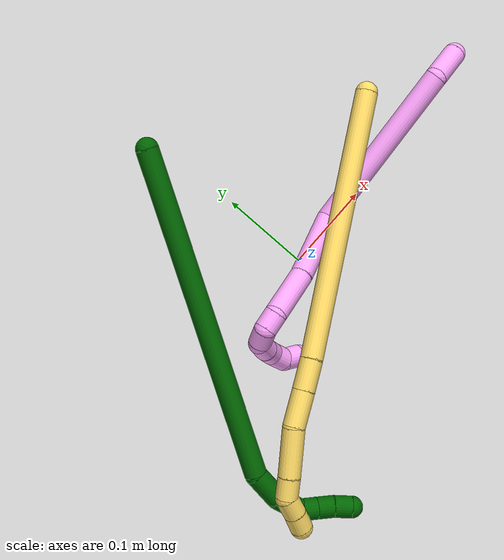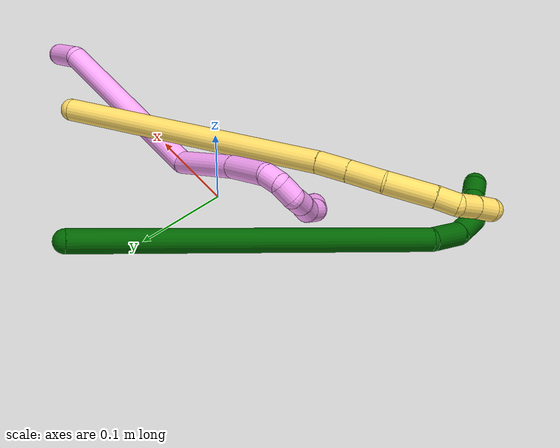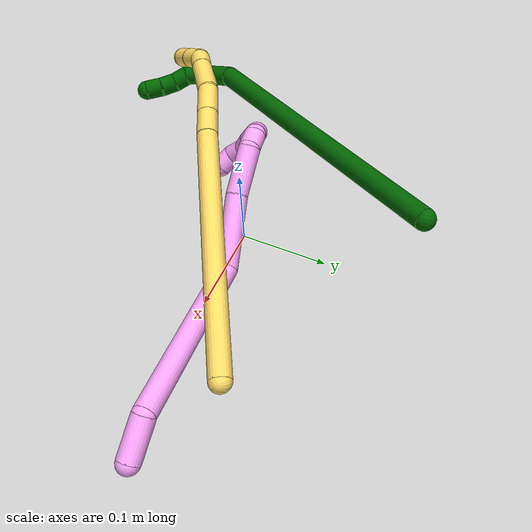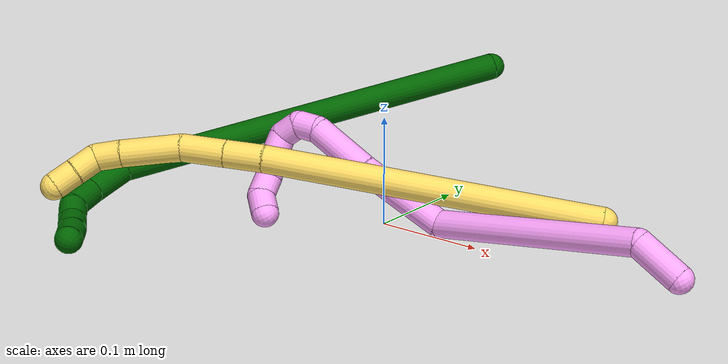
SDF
<sdf version="1.7">
 <world name="default">
  <model name="photoneo_s_sensor">
   <static>1</static>
   <pose>0 0 2 1.57079 1.57079 3.14159</pose>
   <link name="link">
    <inertial><mass>0.1</mass></inertial>
    <sensor name="sensor" type="depth">
     <update_rate>30</update_rate>
     <camera>
      <horizontal_fov>1.22</horizontal_fov>
      <image><width>1920</width><height>1200</height><format>B8G8R8</format></image>
      <clip><near>0.1</near><far>4</far></clip>
      <depth_camera><output>points</output></depth_camera>
     </camera>
     <plugin name="camera_plugin" filename="libgazebo_ros_depth_camera.so">
      <baseline>0.2</baseline>
      <alwaysOn>1</alwaysOn>
      <updateRate>0.0</updateRate>
      <cameraName>camera_ir</cameraName>
      <imageTopicName>/camera/color/image_raw</imageTopicName>
      <cameraInfoTopicName>/camera/color/camera_info</cameraInfoTopicName>
      <depthImageTopicName>/camera/depth/image_raw</depthImageTopicName>
      <depthImageCameraInfoTopicName>/camera/depth/camera_info</depthImageCameraInfoTopicName>
      <pointCloudTopicName>/camera/depth/points</pointCloudTopicName>
      <frameName>fr_optical</frameName>
      <pointCloudCutoff>0.1</pointCloudCutoff>
      <pointCloudCutoffMax>2.0</pointCloudCutoffMax>
      <distortionK1>0</distortionK1>
      <distortionK2>0</distortionK2>
      <distortionK3>0</distortionK3>
      <distortionT1>0</distortionT1>
      <distortionT2>0</distortionT2>
      <CxPrime>0</CxPrime>
      <Cx>0</Cx>
      <Cy>0</Cy>
      <focalLength>0</focalLength>
      <hackBaseline>0</hackBaseline>
     </plugin>
    </sensor>
   </link>
  </model>
  <model name="bin">
   <static>1</static>
   <link name="bottom">
    <collision name="collision-bottom">
     <pose>0 0 -0.01 0 -0 0</pose>
     <geometry><box><size>0.8 0.6 0.02</size></box></geometry>
     <surface>
      <friction><ode><mu>100</mu><mu2>100</mu2></ode></friction>
      <contact><collide_bitmask>65535</collide_bitmask></contact>
     </surface>
    </collision>
   </link>
   <link name="west_wall">
    <collision name="collision-west_wall">
     <pose>-0.41 0 0.1 0 -0 0</pose>
     <geometry><box><size>0.02 0.6 0.2</size></box></geometry>
     <surface>
      <friction><ode><mu>100</mu><mu2>100</mu2></ode></friction>
      <contact><collide_bitmask>65535</collide_bitmask></contact>
     </surface>
    </collision>
   </link>
   <link name="east_wall">
    <collision name="collision-east_wall">
     <pose>0.41 0 0.1 0 -0 0</pose>
     <geometry><box><size>0.02 0.6 0.2</size></box></geometry>
     <surface>
      <friction><ode><mu>100</mu><mu2>100</mu2></ode></friction>
      <contact><collide_bitmask>65535</collide_bitmask></contact>
     </surface>
    </collision>
   </link>
   <link name="south_wall">
    <collision name="collision-south_wall">
     <pose>0 -0.31 0.1 0 -0 0</pose>
     <geometry><box><size>0.8 0.02 0.2</size></box></geometry>
     <surface>
      <friction><ode><mu>100</mu><mu2>100</mu2></ode></friction>
      <contact><collide_bitmask>65535</collide_bitmask></contact>
     </surface>
    </collision>
   </link>
   <link name="north_wall">
    <collision name="collision-north_wall">
     <pose>0 0.31 0.1 0 -0 0</pose>
     <geometry><box><size>0.8 0.02 0.2</size></box></geometry>
     <surface>
      <friction><ode><mu>100</mu><mu2>100</mu2></ode></friction>
      <contact><collide_bitmask>65535</collide_bitmask></contact>
     </surface>
    </collision>
   </link>
  </model>
  <model name="4">
   <static>0</static>
   <link name="4">
    <collision name="collision-cylinder-e_1_1_4">
     <pose>-0.020271 0.001698 0.009768 -0.172096 -1.1159 0.107566</pose>
     <geometry><cylinder><radius>0.0125</radius><length>0.045132</length></cylinder></geometry>
     <surface>
      <friction><ode><mu>1.16</mu><mu2>1.16</mu2><slip1>0</slip1><slip2>0</slip2></ode></friction>
      <contact><ode><kp>1e+06</kp><kd>1</kd><max_vel>0</max_vel><min_depth>0.001</min_depth></ode></contact>
     </surface>
    </collision>
    <visual name="visual-cylinder-e_1_1_4">
     <pose>-0.020271 0.001698 0.009768 -0.172096 -1.1159 0.107566</pose>
     <geometry><cylinder><radius>0.0125</radius><length>0.045132</length></cylinder></geometry>
     <material><ambient>1 0.65098 0.996078 1</ambient></material>
    </visual>
    <collision name="collision-cylinder-e_2_4_5">
     <pose>-0.088568 -0.020778 0.100567 0.289923 -0.516522 -0.077089</pose>
     <geometry><cylinder><radius>0.0125</radius><length>0.194491</length></cylinder></geometry>
     <surface>
      <friction><ode><mu>1.16</mu><mu2>1.16</mu2><slip1>0</slip1><slip2>0</slip2></ode></friction>
      <contact><ode><kp>1e+06</kp><kd>1</kd><max_vel>0</max_vel><min_depth>0.001</min_depth></ode></contact>
     </surface>
    </collision>
    <visual name="visual-cylinder-e_2_4_5">
     <pose>-0.088568 -0.020778 0.100567 0.289923 -0.516522 -0.077089</pose>
     <geometry><cylinder><radius>0.0125</radius><length>0.194491</length></cylinder></geometry>
     <material><ambient>1 0.65098 0.996078 1</ambient></material>
    </visual>
    <collision name="collision-cylinder-e_3_5_6">
     <pose>-0.170922 -0.03552 0.202901 -0.416768 -0.974528 0.223159</pose>
     <geometry><cylinder><radius>0.0125</radius><length>0.082976</length></cylinder></geometry>
     <surface>
      <friction><ode><mu>1.16</mu><mu2>1.16</mu2><slip1>0</slip1><slip2>0</slip2></ode></friction>
      <contact><ode><kp>1e+06</kp><kd>1</kd><max_vel>0</max_vel><min_depth>0.001</min_depth></ode></contact>
     </surface>
    </collision>
    <visual name="visual-cylinder-e_3_5_6">
     <pose>-0.170922 -0.03552 0.202901 -0.416768 -0.974528 0.223159</pose>
     <geometry><cylinder><radius>0.0125</radius><length>0.082976</length></cylinder></geometry>
     <material><ambient>1 0.65098 0.996078 1</ambient></material>
    </visual>
    <collision name="collision-cylinder-e_4_6_7">
     <pose>-0.230074 -0.022773 0.237577 -0.24307 -1.06409 0.143549</pose>
     <geometry><cylinder><radius>0.0125</radius><length>0.05678</length></cylinder></geometry>
     <surface>
      <friction><ode><mu>1.16</mu><mu2>1.16</mu2><slip1>0</slip1><slip2>0</slip2></ode></friction>
      <contact><ode><kp>1e+06</kp><kd>1</kd><max_vel>0</max_vel><min_depth>0.001</min_depth></ode></contact>
     </surface>
    </collision>
    <visual name="visual-cylinder-e_4_6_7">
     <pose>-0.230074 -0.022773 0.237577 -0.24307 -1.06409 0.143549</pose>
     <geometry><cylinder><radius>0.0125</radius><length>0.05678</length></cylinder></geometry>
     <material><ambient>1 0.65098 0.996078 1</ambient></material>
    </visual>
    <collision name="collision-cylinder-e_5_7_8">
     <pose>-0.261327 -0.020436 0.258698 0.125687 -0.688807 -0.045136</pose>
     <geometry><cylinder><radius>0.0125</radius><length>0.020233</length></cylinder></geometry>
     <surface>
      <friction><ode><mu>1.16</mu><mu2>1.16</mu2><slip1>0</slip1><slip2>0</slip2></ode></friction>
      <contact><ode><kp>1e+06</kp><kd>1</kd><max_vel>0</max_vel><min_depth>0.001</min_depth></ode></contact>
     </surface>
    </collision>
    <visual name="visual-cylinder-e_5_7_8">
     <pose>-0.261327 -0.020436 0.258698 0.125687 -0.688807 -0.045136</pose>
     <geometry><cylinder><radius>0.0125</radius><length>0.020233</length></cylinder></geometry>
     <material><ambient>1 0.65098 0.996078 1</ambient></material>
    </visual>
    <collision name="collision-cylinder-e_6_8_9">
     <pose>-0.267188 -0.023955 0.276131 0.256488 0.056769 0.007322</pose>
     <geometry><cylinder><radius>0.0125</radius><length>0.020056</length></cylinder></geometry>
     <surface>
      <friction><ode><mu>1.16</mu><mu2>1.16</mu2><slip1>0</slip1><slip2>0</slip2></ode></friction>
      <contact><ode><kp>1e+06</kp><kd>1</kd><max_vel>0</max_vel><min_depth>0.001</min_depth></ode></contact>
     </surface>
    </collision>
    <visual name="visual-cylinder-e_6_8_9">
     <pose>-0.267188 -0.023955 0.276131 0.256488 0.056769 0.007322</pose>
     <geometry><cylinder><radius>0.0125</radius><length>0.020056</length></cylinder></geometry>
     <material><ambient>1 0.65098 0.996078 1</ambient></material>
    </visual>
    <collision name="collision-cylinder-e_7_9_10">
     <pose>-0.259276 -0.026569 0.292803 0.010652 0.810192 0.004568</pose>
     <geometry><cylinder><radius>0.0125</radius><length>0.020274</length></cylinder></geometry>
     <surface>
      <friction><ode><mu>1.16</mu><mu2>1.16</mu2><slip1>0</slip1><slip2>0</slip2></ode></friction>
      <contact><ode><kp>1e+06</kp><kd>1</kd><max_vel>0</max_vel><min_depth>0.001</min_depth></ode></contact>
     </surface>
    </collision>
    <visual name="visual-cylinder-e_7_9_10">
     <pose>-0.259276 -0.026569 0.292803 0.010652 0.810192 0.004568</pose>
     <geometry><cylinder><radius>0.0125</radius><length>0.020274</length></cylinder></geometry>
     <material><ambient>1 0.65098 0.996078 1</ambient></material>
    </visual>
    <collision name="collision-cylinder-e_8_10_11">
     <pose>-0.243875 -0.027371 0.305669 0.123175 0.936908 0.062388</pose>
     <geometry><cylinder><radius>0.0125</radius><length>0.02</length></cylinder></geometry>
     <surface>
      <friction><ode><mu>1.16</mu><mu2>1.16</mu2><slip1>0</slip1><slip2>0</slip2></ode></friction>
      <contact><ode><kp>1e+06</kp><kd>1</kd><max_vel>0</max_vel><min_depth>0.001</min_depth></ode></contact>
     </surface>
    </collision>
    <visual name="visual-cylinder-e_8_10_11">
     <pose>-0.243875 -0.027371 0.305669 0.123175 0.936908 0.062388</pose>
     <geometry><cylinder><radius>0.0125</radius><length>0.02</length></cylinder></geometry>
     <material><ambient>1 0.65098 0.996078 1</ambient></material>
    </visual>
    <collision name="collision-cylinder-e_9_11_12">
     <pose>-0.228021 -0.024689 0.31681 -0.57488 0.893464 -0.281358</pose>
     <geometry><cylinder><radius>0.0125</radius><length>0.020011</length></cylinder></geometry>
     <surface>
      <friction><ode><mu>1.16</mu><mu2>1.16</mu2><slip1>0</slip1><slip2>0</slip2></ode></friction>
      <contact><ode><kp>1e+06</kp><kd>1</kd><max_vel>0</max_vel><min_depth>0.001</min_depth></ode></contact>
     </surface>
    </collision>
    <visual name="visual-cylinder-e_9_11_12">
     <pose>-0.228021 -0.024689 0.31681 -0.57488 0.893464 -0.281358</pose>
     <geometry><cylinder><radius>0.0125</radius><length>0.020011</length></cylinder></geometry>
     <material><ambient>1 0.65098 0.996078 1</ambient></material>
    </visual>
    <collision name="collision-cylinder-e_10_12_2">
     <pose>-0.210628 -0.018388 0.321981 -1.60222 1.27792 -1.30815</pose>
     <geometry><cylinder><radius>0.0125</radius><length>0.020046</length></cylinder></geometry>
     <surface>
      <friction><ode><mu>1.16</mu><mu2>1.16</mu2><slip1>0</slip1><slip2>0</slip2></ode></friction>
      <contact><ode><kp>1e+06</kp><kd>1</kd><max_vel>0</max_vel><min_depth>0.001</min_depth></ode></contact>
     </surface>
    </collision>
    <visual name="visual-cylinder-e_10_12_2">
     <pose>-0.210628 -0.018388 0.321981 -1.60222 1.27792 -1.30815</pose>
     <geometry><cylinder><radius>0.0125</radius><length>0.020046</length></cylinder></geometry>
     <material><ambient>1 0.65098 0.996078 1</ambient></material>
    </visual>
    <collision name="collision-sphere-2">
     <pose>-0.201031 -0.015495 0.32189 0 -0 0</pose>
     <geometry><sphere><radius>0.0125</radius></sphere></geometry>
     <surface>
      <friction><ode><mu>1.16</mu><mu2>1.16</mu2><slip1>0</slip1><slip2>0</slip2></ode></friction>
      <contact><ode><kp>1e+06</kp><kd>1</kd><max_vel>0</max_vel><min_depth>0.001</min_depth></ode></contact>
     </surface>
    </collision>
    <visual name="visual-sphere-2">
     <pose>-0.201031 -0.015495 0.32189 0 -0 0</pose>
     <geometry><sphere><radius>0.0125</radius></sphere></geometry>
     <material><ambient>1 0.65098 0.996078 1</ambient></material>
    </visual>
    <collision name="collision-sphere-12">
     <pose>-0.220224 -0.02128 0.322072 0 -0 0</pose>
     <geometry><sphere><radius>0.0125</radius></sphere></geometry>
     <surface>
      <friction><ode><mu>1.16</mu><mu2>1.16</mu2><slip1>0</slip1><slip2>0</slip2></ode></friction>
      <contact><ode><kp>1e+06</kp><kd>1</kd><max_vel>0</max_vel><min_depth>0.001</min_depth></ode></contact>
     </surface>
    </collision>
    <visual name="visual-sphere-12">
     <pose>-0.220224 -0.02128 0.322072 0 -0 0</pose>
     <geometry><sphere><radius>0.0125</radius></sphere></geometry>
     <material><ambient>1 0.65098 0.996078 1</ambient></material>
    </visual>
    <collision name="collision-sphere-11">
     <pose>-0.235817 -0.028099 0.311547 0 -0 0</pose>
     <geometry><sphere><radius>0.0125</radius></sphere></geometry>
     <surface>
      <friction><ode><mu>1.16</mu><mu2>1.16</mu2><slip1>0</slip1><slip2>0</slip2></ode></friction>
      <contact><ode><kp>1e+06</kp><kd>1</kd><max_vel>0</max_vel><min_depth>0.001</min_depth></ode></contact>
     </surface>
    </collision>
    <visual name="visual-sphere-11">
     <pose>-0.235817 -0.028099 0.311547 0 -0 0</pose>
     <geometry><sphere><radius>0.0125</radius></sphere></geometry>
     <material><ambient>1 0.65098 0.996078 1</ambient></material>
    </visual>
    <collision name="collision-sphere-10">
     <pose>-0.251932 -0.026643 0.299791 0 -0 0</pose>
     <geometry><sphere><radius>0.0125</radius></sphere></geometry>
     <surface>
      <friction><ode><mu>1.16</mu><mu2>1.16</mu2><slip1>0</slip1><slip2>0</slip2></ode></friction>
      <contact><ode><kp>1e+06</kp><kd>1</kd><max_vel>0</max_vel><min_depth>0.001</min_depth></ode></contact>
     </surface>
    </collision>
    <visual name="visual-sphere-10">
     <pose>-0.251932 -0.026643 0.299791 0 -0 0</pose>
     <geometry><sphere><radius>0.0125</radius></sphere></geometry>
     <material><ambient>1 0.65098 0.996078 1</ambient></material>
    </visual>
    <collision name="collision-sphere-9">
     <pose>-0.266619 -0.026495 0.285816 0 -0 0</pose>
     <geometry><sphere><radius>0.0125</radius></sphere></geometry>
     <surface>
      <friction><ode><mu>1.16</mu><mu2>1.16</mu2><slip1>0</slip1><slip2>0</slip2></ode></friction>
      <contact><ode><kp>1e+06</kp><kd>1</kd><max_vel>0</max_vel><min_depth>0.001</min_depth></ode></contact>
     </surface>
    </collision>
    <visual name="visual-sphere-9">
     <pose>-0.266619 -0.026495 0.285816 0 -0 0</pose>
     <geometry><sphere><radius>0.0125</radius></sphere></geometry>
     <material><ambient>1 0.65098 0.996078 1</ambient></material>
    </visual>
    <collision name="collision-sphere-4">
     <pose>-0.040542 0.003396 0.019537 0 -0 0</pose>
     <geometry><sphere><radius>0.0125</radius></sphere></geometry>
     <surface>
      <friction><ode><mu>1.16</mu><mu2>1.16</mu2><slip1>0</slip1><slip2>0</slip2></ode></friction>
      <contact><ode><kp>1e+06</kp><kd>1</kd><max_vel>0</max_vel><min_depth>0.001</min_depth></ode></contact>
     </surface>
    </collision>
    <visual name="visual-sphere-4">
     <pose>-0.040542 0.003396 0.019537 0 -0 0</pose>
     <geometry><sphere><radius>0.0125</radius></sphere></geometry>
     <material><ambient>1 0.65098 0.996078 1</ambient></material>
    </visual>
    <collision name="collision-sphere-1">
     <geometry><sphere><radius>0.0125</radius></sphere></geometry>
     <surface>
      <friction><ode><mu>1.16</mu><mu2>1.16</mu2><slip1>0</slip1><slip2>0</slip2></ode></friction>
      <contact><ode><kp>1e+06</kp><kd>1</kd><max_vel>0</max_vel><min_depth>0.001</min_depth></ode></contact>
     </surface>
    </collision>
    <visual name="visual-sphere-1">
     <geometry><sphere><radius>0.0125</radius></sphere></geometry>
     <material><ambient>1 0.65098 0.996078 1</ambient></material>
    </visual>
    <collision name="collision-sphere-8">
     <pose>-0.267757 -0.021415 0.266447 0 -0 0</pose>
     <geometry><sphere><radius>0.0125</radius></sphere></geometry>
     <surface>
      <friction><ode><mu>1.16</mu><mu2>1.16</mu2><slip1>0</slip1><slip2>0</slip2></ode></friction>
      <contact><ode><kp>1e+06</kp><kd>1</kd><max_vel>0</max_vel><min_depth>0.001</min_depth></ode></contact>
     </surface>
    </collision>
    <visual name="visual-sphere-8">
     <pose>-0.267757 -0.021415 0.266447 0 -0 0</pose>
     <geometry><sphere><radius>0.0125</radius></sphere></geometry>
     <material><ambient>1 0.65098 0.996078 1</ambient></material>
    </visual>
    <collision name="collision-sphere-5">
     <pose>-0.136593 -0.044951 0.181597 0 -0 0</pose>
     <geometry><sphere><radius>0.0125</radius></sphere></geometry>
     <surface>
      <friction><ode><mu>1.16</mu><mu2>1.16</mu2><slip1>0</slip1><slip2>0</slip2></ode></friction>
      <contact><ode><kp>1e+06</kp><kd>1</kd><max_vel>0</max_vel><min_depth>0.001</min_depth></ode></contact>
     </surface>
    </collision>
    <visual name="visual-sphere-5">
     <pose>-0.136593 -0.044951 0.181597 0 -0 0</pose>
     <geometry><sphere><radius>0.0125</radius></sphere></geometry>
     <material><ambient>1 0.65098 0.996078 1</ambient></material>
    </visual>
    <collision name="collision-sphere-6">
     <pose>-0.205251 -0.026089 0.224204 0 -0 0</pose>
     <geometry><sphere><radius>0.0125</radius></sphere></geometry>
     <surface>
      <friction><ode><mu>1.16</mu><mu2>1.16</mu2><slip1>0</slip1><slip2>0</slip2></ode></friction>
      <contact><ode><kp>1e+06</kp><kd>1</kd><max_vel>0</max_vel><min_depth>0.001</min_depth></ode></contact>
     </surface>
    </collision>
    <visual name="visual-sphere-6">
     <pose>-0.205251 -0.026089 0.224204 0 -0 0</pose>
     <geometry><sphere><radius>0.0125</radius></sphere></geometry>
     <material><ambient>1 0.65098 0.996078 1</ambient></material>
    </visual>
    <collision name="collision-sphere-7">
     <pose>-0.254897 -0.019457 0.25095 0 -0 0</pose>
     <geometry><sphere><radius>0.0125</radius></sphere></geometry>
     <surface>
      <friction><ode><mu>1.16</mu><mu2>1.16</mu2><slip1>0</slip1><slip2>0</slip2></ode></friction>
      <contact><ode><kp>1e+06</kp><kd>1</kd><max_vel>0</max_vel><min_depth>0.001</min_depth></ode></contact>
     </surface>
    </collision>
    <visual name="visual-sphere-7">
     <pose>-0.254897 -0.019457 0.25095 0 -0 0</pose>
     <geometry><sphere><radius>0.0125</radius></sphere></geometry>
     <material><ambient>1 0.65098 0.996078 1</ambient></material>
    </visual>
    <inertial>
     <pose>-0.149904 -0.022095 0.171884 0 -0 0</pose>
     <mass>0.5</mass>
     <inertia>
      <ixx>0.000534</ixx>
      <ixy>0</ixy>
      <ixz>0</ixz>
      <iyy>0.000649</iyy>
      <iyz>0</iyz>
      <izz>0.000533</izz>
     </inertia>
    </inertial>
   </link>
   <pose>0.28792 0.020924 0.012224 2.31157 0.847235 -0.400789</pose>
  </model>
  <model name="5">
   <static>0</static>
   <link name="5">
    <collision name="collision-cylinder-e_1_1_4">
     <pose>-0.051958 -0.124614 -0.067115 2.06483 -0.351825 -0.578553</pose>
     <geometry><cylinder><radius>0.0125</radius><length>0.301548</length></cylinder></geometry>
     <surface>
      <friction><ode><mu>1.16</mu><mu2>1.16</mu2><slip1>0</slip1><slip2>0</slip2></ode></friction>
      <contact><ode><kp>1e+06</kp><kd>1</kd><max_vel>0</max_vel><min_depth>0.001</min_depth></ode></contact>
     </surface>
    </collision>
    <visual name="visual-cylinder-e_1_1_4">
     <pose>-0.051958 -0.124614 -0.067115 2.06483 -0.351825 -0.578553</pose>
     <geometry><cylinder><radius>0.0125</radius><length>0.301548</length></cylinder></geometry>
     <material><ambient>1 0.858824 0.4 1</ambient></material>
    </visual>
    <collision name="collision-cylinder-e_2_4_5">
     <pose>-0.109313 -0.263156 -0.143053 2.13539 -0.316304 -0.564131</pose>
     <geometry><cylinder><radius>0.0125</radius><length>0.034696</length></cylinder></geometry>
     <surface>
      <friction><ode><mu>1.16</mu><mu2>1.16</mu2><slip1>0</slip1><slip2>0</slip2></ode></friction>
      <contact><ode><kp>1e+06</kp><kd>1</kd><max_vel>0</max_vel><min_depth>0.001</min_depth></ode></contact>
     </surface>
    </collision>
    <visual name="visual-cylinder-e_2_4_5">
     <pose>-0.109313 -0.263156 -0.143053 2.13539 -0.316304 -0.564131</pose>
     <geometry><cylinder><radius>0.0125</radius><length>0.034696</length></cylinder></geometry>
     <material><ambient>1 0.858824 0.4 1</ambient></material>
    </visual>
    <collision name="collision-cylinder-e_3_5_6">
     <pose>-0.121085 -0.293145 -0.162356 2.14902 -0.320959 -0.580961</pose>
     <geometry><cylinder><radius>0.0125</radius><length>0.040419</length></cylinder></geometry>
     <surface>
      <friction><ode><mu>1.16</mu><mu2>1.16</mu2><slip1>0</slip1><slip2>0</slip2></ode></friction>
      <contact><ode><kp>1e+06</kp><kd>1</kd><max_vel>0</max_vel><min_depth>0.001</min_depth></ode></contact>
     </surface>
    </collision>
    <visual name="visual-cylinder-e_3_5_6">
     <pose>-0.121085 -0.293145 -0.162356 2.14902 -0.320959 -0.580961</pose>
     <geometry><cylinder><radius>0.0125</radius><length>0.040419</length></cylinder></geometry>
     <material><ambient>1 0.858824 0.4 1</ambient></material>
    </visual>
    <collision name="collision-cylinder-e_4_6_7">
     <pose>-0.129397 -0.332791 -0.186126 2.08387 -0.071404 -0.122086</pose>
     <geometry><cylinder><radius>0.0125</radius><length>0.054284</length></cylinder></geometry>
     <surface>
      <friction><ode><mu>1.16</mu><mu2>1.16</mu2><slip1>0</slip1><slip2>0</slip2></ode></friction>
      <contact><ode><kp>1e+06</kp><kd>1</kd><max_vel>0</max_vel><min_depth>0.001</min_depth></ode></contact>
     </surface>
    </collision>
    <visual name="visual-cylinder-e_4_6_7">
     <pose>-0.129397 -0.332791 -0.186126 2.08387 -0.071404 -0.122086</pose>
     <geometry><cylinder><radius>0.0125</radius><length>0.054284</length></cylinder></geometry>
     <material><ambient>1 0.858824 0.4 1</ambient></material>
    </visual>
    <collision name="collision-cylinder-e_5_7_8">
     <pose>-0.13175 -0.36653 -0.205921 2.14079 -0.034508 -0.063092</pose>
     <geometry><cylinder><radius>0.0125</radius><length>0.02413</length></cylinder></geometry>
     <surface>
      <friction><ode><mu>1.16</mu><mu2>1.16</mu2><slip1>0</slip1><slip2>0</slip2></ode></friction>
      <contact><ode><kp>1e+06</kp><kd>1</kd><max_vel>0</max_vel><min_depth>0.001</min_depth></ode></contact>
     </surface>
    </collision>
    <visual name="visual-cylinder-e_5_7_8">
     <pose>-0.13175 -0.36653 -0.205921 2.14079 -0.034508 -0.063092</pose>
     <geometry><cylinder><radius>0.0125</radius><length>0.02413</length></cylinder></geometry>
     <material><ambient>1 0.858824 0.4 1</ambient></material>
    </visual>
    <collision name="collision-cylinder-e_6_8_9">
     <pose>-0.126541 -0.386464 -0.214916 1.81986 0.508385 0.645</pose>
     <geometry><cylinder><radius>0.0125</radius><length>0.023111</length></cylinder></geometry>
     <surface>
      <friction><ode><mu>1.16</mu><mu2>1.16</mu2><slip1>0</slip1><slip2>0</slip2></ode></friction>
      <contact><ode><kp>1e+06</kp><kd>1</kd><max_vel>0</max_vel><min_depth>0.001</min_depth></ode></contact>
     </surface>
    </collision>
    <visual name="visual-cylinder-e_6_8_9">
     <pose>-0.126541 -0.386464 -0.214916 1.81986 0.508385 0.645</pose>
     <geometry><cylinder><radius>0.0125</radius><length>0.023111</length></cylinder></geometry>
     <material><ambient>1 0.858824 0.4 1</ambient></material>
    </visual>
    <collision name="collision-cylinder-e_7_9_2">
     <pose>-0.115735 -0.405357 -0.220423 1.89076 0.495062 0.67328</pose>
     <geometry><cylinder><radius>0.0125</radius><length>0.021813</length></cylinder></geometry>
     <surface>
      <friction><ode><mu>1.16</mu><mu2>1.16</mu2><slip1>0</slip1><slip2>0</slip2></ode></friction>
      <contact><ode><kp>1e+06</kp><kd>1</kd><max_vel>0</max_vel><min_depth>0.001</min_depth></ode></contact>
     </surface>
    </collision>
    <visual name="visual-cylinder-e_7_9_2">
     <pose>-0.115735 -0.405357 -0.220423 1.89076 0.495062 0.67328</pose>
     <geometry><cylinder><radius>0.0125</radius><length>0.021813</length></cylinder></geometry>
     <material><ambient>1 0.858824 0.4 1</ambient></material>
    </visual>
    <collision name="collision-sphere-2">
     <pose>-0.110553 -0.414466 -0.223441 0 -0 0</pose>
     <geometry><sphere><radius>0.0125</radius></sphere></geometry>
     <surface>
      <friction><ode><mu>1.16</mu><mu2>1.16</mu2><slip1>0</slip1><slip2>0</slip2></ode></friction>
      <contact><ode><kp>1e+06</kp><kd>1</kd><max_vel>0</max_vel><min_depth>0.001</min_depth></ode></contact>
     </surface>
    </collision>
    <visual name="visual-sphere-2">
     <pose>-0.110553 -0.414466 -0.223441 0 -0 0</pose>
     <geometry><sphere><radius>0.0125</radius></sphere></geometry>
     <material><ambient>1 0.858824 0.4 1</ambient></material>
    </visual>
    <collision name="collision-sphere-9">
     <pose>-0.120916 -0.396247 -0.217404 0 -0 0</pose>
     <geometry><sphere><radius>0.0125</radius></sphere></geometry>
     <surface>
      <friction><ode><mu>1.16</mu><mu2>1.16</mu2><slip1>0</slip1><slip2>0</slip2></ode></friction>
      <contact><ode><kp>1e+06</kp><kd>1</kd><max_vel>0</max_vel><min_depth>0.001</min_depth></ode></contact>
     </surface>
    </collision>
    <visual name="visual-sphere-9">
     <pose>-0.120916 -0.396247 -0.217404 0 -0 0</pose>
     <geometry><sphere><radius>0.0125</radius></sphere></geometry>
     <material><ambient>1 0.858824 0.4 1</ambient></material>
    </visual>
    <collision name="collision-sphere-4">
     <pose>-0.103917 -0.249228 -0.134231 0 -0 0</pose>
     <geometry><sphere><radius>0.0125</radius></sphere></geometry>
     <surface>
      <friction><ode><mu>1.16</mu><mu2>1.16</mu2><slip1>0</slip1><slip2>0</slip2></ode></friction>
      <contact><ode><kp>1e+06</kp><kd>1</kd><max_vel>0</max_vel><min_depth>0.001</min_depth></ode></contact>
     </surface>
    </collision>
    <visual name="visual-sphere-4">
     <pose>-0.103917 -0.249228 -0.134231 0 -0 0</pose>
     <geometry><sphere><radius>0.0125</radius></sphere></geometry>
     <material><ambient>1 0.858824 0.4 1</ambient></material>
    </visual>
    <collision name="collision-sphere-1">
     <geometry><sphere><radius>0.0125</radius></sphere></geometry>
     <surface>
      <friction><ode><mu>1.16</mu><mu2>1.16</mu2><slip1>0</slip1><slip2>0</slip2></ode></friction>
      <contact><ode><kp>1e+06</kp><kd>1</kd><max_vel>0</max_vel><min_depth>0.001</min_depth></ode></contact>
     </surface>
    </collision>
    <visual name="visual-sphere-1">
     <geometry><sphere><radius>0.0125</radius></sphere></geometry>
     <material><ambient>1 0.858824 0.4 1</ambient></material>
    </visual>
    <collision name="collision-sphere-8">
     <pose>-0.132166 -0.376682 -0.212428 0 -0 0</pose>
     <geometry><sphere><radius>0.0125</radius></sphere></geometry>
     <surface>
      <friction><ode><mu>1.16</mu><mu2>1.16</mu2><slip1>0</slip1><slip2>0</slip2></ode></friction>
      <contact><ode><kp>1e+06</kp><kd>1</kd><max_vel>0</max_vel><min_depth>0.001</min_depth></ode></contact>
     </surface>
    </collision>
    <visual name="visual-sphere-8">
     <pose>-0.132166 -0.376682 -0.212428 0 -0 0</pose>
     <geometry><sphere><radius>0.0125</radius></sphere></geometry>
     <material><ambient>1 0.858824 0.4 1</ambient></material>
    </visual>
    <collision name="collision-sphere-5">
     <pose>-0.114709 -0.277085 -0.151875 0 -0 0</pose>
     <geometry><sphere><radius>0.0125</radius></sphere></geometry>
     <surface>
      <friction><ode><mu>1.16</mu><mu2>1.16</mu2><slip1>0</slip1><slip2>0</slip2></ode></friction>
      <contact><ode><kp>1e+06</kp><kd>1</kd><max_vel>0</max_vel><min_depth>0.001</min_depth></ode></contact>
     </surface>
    </collision>
    <visual name="visual-sphere-5">
     <pose>-0.114709 -0.277085 -0.151875 0 -0 0</pose>
     <geometry><sphere><radius>0.0125</radius></sphere></geometry>
     <material><ambient>1 0.858824 0.4 1</ambient></material>
    </visual>
    <collision name="collision-sphere-6">
     <pose>-0.127461 -0.309205 -0.172837 0 -0 0</pose>
     <geometry><sphere><radius>0.0125</radius></sphere></geometry>
     <surface>
      <friction><ode><mu>1.16</mu><mu2>1.16</mu2><slip1>0</slip1><slip2>0</slip2></ode></friction>
      <contact><ode><kp>1e+06</kp><kd>1</kd><max_vel>0</max_vel><min_depth>0.001</min_depth></ode></contact>
     </surface>
    </collision>
    <visual name="visual-sphere-6">
     <pose>-0.127461 -0.309205 -0.172837 0 -0 0</pose>
     <geometry><sphere><radius>0.0125</radius></sphere></geometry>
     <material><ambient>1 0.858824 0.4 1</ambient></material>
    </visual>
    <collision name="collision-sphere-7">
     <pose>-0.131333 -0.356378 -0.199415 0 -0 0</pose>
     <geometry><sphere><radius>0.0125</radius></sphere></geometry>
     <surface>
      <friction><ode><mu>1.16</mu><mu2>1.16</mu2><slip1>0</slip1><slip2>0</slip2></ode></friction>
      <contact><ode><kp>1e+06</kp><kd>1</kd><max_vel>0</max_vel><min_depth>0.001</min_depth></ode></contact>
     </surface>
    </collision>
    <visual name="visual-sphere-7">
     <pose>-0.131333 -0.356378 -0.199415 0 -0 0</pose>
     <geometry><sphere><radius>0.0125</radius></sphere></geometry>
     <material><ambient>1 0.858824 0.4 1</ambient></material>
    </visual>
    <inertial>
     <pose>-0.080014 -0.206478 -0.113223 0 -0 0</pose>
     <mass>0.5</mass>
     <inertia>
      <ixx>0.000641</ixx>
      <ixy>0</ixy>
      <ixz>0</ixz>
      <iyy>-0.00176</iyy>
      <iyz>0</iyz>
      <izz>0.002703</izz>
     </inertia>
    </inertial>
   </link>
   <pose>0.188266 0.065695 0.026774 -0.171789 1.01145 -0.610679</pose>
  </model>
  <model name="6">
   <static>0</static>
   <link name="6">
    <collision name="collision-cylinder-e_1_1_4">
     <pose>-0.009134 -0.148918 0.110967 0.930403 -0.049145 -0.024672</pose>
     <geometry><cylinder><radius>0.0125</radius><length>0.371881</length></cylinder></geometry>
     <surface>
      <friction><ode><mu>1.16</mu><mu2>1.16</mu2><slip1>0</slip1><slip2>0</slip2></ode></friction>
      <contact><ode><kp>1e+06</kp><kd>1</kd><max_vel>0</max_vel><min_depth>0.001</min_depth></ode></contact>
     </surface>
    </collision>
    <visual name="visual-cylinder-e_1_1_4">
     <pose>-0.009134 -0.148918 0.110967 0.930403 -0.049145 -0.024672</pose>
     <geometry><cylinder><radius>0.0125</radius><length>0.371881</length></cylinder></geometry>
     <material><ambient>0 0.392157 0.003922 1</ambient></material>
    </visual>
    <collision name="collision-cylinder-e_2_4_5">
     <pose>-0.018542 -0.316591 0.22624 1.34516 -0.014233 -0.011336</pose>
     <geometry><cylinder><radius>0.0125</radius><length>0.038488</length></cylinder></geometry>
     <surface>
      <friction><ode><mu>1.16</mu><mu2>1.16</mu2><slip1>0</slip1><slip2>0</slip2></ode></friction>
      <contact><ode><kp>1e+06</kp><kd>1</kd><max_vel>0</max_vel><min_depth>0.001</min_depth></ode></contact>
     </surface>
    </collision>
    <visual name="visual-cylinder-e_2_4_5">
     <pose>-0.018542 -0.316591 0.22624 1.34516 -0.014233 -0.011336</pose>
     <geometry><cylinder><radius>0.0125</radius><length>0.038488</length></cylinder></geometry>
     <material><ambient>0 0.392157 0.003922 1</ambient></material>
    </visual>
    <collision name="collision-cylinder-e_3_5_6">
     <pose>-0.014543 -0.349527 0.230233 1.59279 0.292626 0.29904</pose>
     <geometry><cylinder><radius>0.0125</radius><length>0.029629</length></cylinder></geometry>
     <surface>
      <friction><ode><mu>1.16</mu><mu2>1.16</mu2><slip1>0</slip1><slip2>0</slip2></ode></friction>
      <contact><ode><kp>1e+06</kp><kd>1</kd><max_vel>0</max_vel><min_depth>0.001</min_depth></ode></contact>
     </surface>
    </collision>
    <visual name="visual-cylinder-e_3_5_6">
     <pose>-0.014543 -0.349527 0.230233 1.59279 0.292626 0.29904</pose>
     <geometry><cylinder><radius>0.0125</radius><length>0.029629</length></cylinder></geometry>
     <material><ambient>0 0.392157 0.003922 1</ambient></material>
    </visual>
    <collision name="collision-cylinder-e_4_6_7">
     <pose>-0.00833 -0.37185 0.224448 2.16265 0.19516 0.363465</pose>
     <geometry><cylinder><radius>0.0125</radius><length>0.02</length></cylinder></geometry>
     <surface>
      <friction><ode><mu>1.16</mu><mu2>1.16</mu2><slip1>0</slip1><slip2>0</slip2></ode></friction>
      <contact><ode><kp>1e+06</kp><kd>1</kd><max_vel>0</max_vel><min_depth>0.001</min_depth></ode></contact>
     </surface>
    </collision>
    <visual name="visual-cylinder-e_4_6_7">
     <pose>-0.00833 -0.37185 0.224448 2.16265 0.19516 0.363465</pose>
     <geometry><cylinder><radius>0.0125</radius><length>0.02</length></cylinder></geometry>
     <material><ambient>0 0.392157 0.003922 1</ambient></material>
    </visual>
    <collision name="collision-cylinder-e_5_7_8">
     <pose>-0.001691 -0.387113 0.213759 2.2029 0.489247 0.914797</pose>
     <geometry><cylinder><radius>0.0125</radius><length>0.020001</length></cylinder></geometry>
     <surface>
      <friction><ode><mu>1.16</mu><mu2>1.16</mu2><slip1>0</slip1><slip2>0</slip2></ode></friction>
      <contact><ode><kp>1e+06</kp><kd>1</kd><max_vel>0</max_vel><min_depth>0.001</min_depth></ode></contact>
     </surface>
    </collision>
    <visual name="visual-cylinder-e_5_7_8">
     <pose>-0.001691 -0.387113 0.213759 2.2029 0.489247 0.914797</pose>
     <geometry><cylinder><radius>0.0125</radius><length>0.020001</length></cylinder></geometry>
     <material><ambient>0 0.392157 0.003922 1</ambient></material>
    </visual>
    <collision name="collision-cylinder-e_6_8_2">
     <pose>0.007849 -0.402028 0.204562 2.04318 0.505234 0.798273</pose>
     <geometry><cylinder><radius>0.0125</radius><length>0.02</length></cylinder></geometry>
     <surface>
      <friction><ode><mu>1.16</mu><mu2>1.16</mu2><slip1>0</slip1><slip2>0</slip2></ode></friction>
      <contact><ode><kp>1e+06</kp><kd>1</kd><max_vel>0</max_vel><min_depth>0.001</min_depth></ode></contact>
     </surface>
    </collision>
    <visual name="visual-cylinder-e_6_8_2">
     <pose>0.007849 -0.402028 0.204562 2.04318 0.505234 0.798273</pose>
     <geometry><cylinder><radius>0.0125</radius><length>0.02</length></cylinder></geometry>
     <material><ambient>0 0.392157 0.003922 1</ambient></material>
    </visual>
    <collision name="collision-sphere-2">
     <pose>0.012689 -0.40982 0.20058 0 -0 0</pose>
     <geometry><sphere><radius>0.0125</radius></sphere></geometry>
     <surface>
      <friction><ode><mu>1.16</mu><mu2>1.16</mu2><slip1>0</slip1><slip2>0</slip2></ode></friction>
      <contact><ode><kp>1e+06</kp><kd>1</kd><max_vel>0</max_vel><min_depth>0.001</min_depth></ode></contact>
     </surface>
    </collision>
    <visual name="visual-sphere-2">
     <pose>0.012689 -0.40982 0.20058 0 -0 0</pose>
     <geometry><sphere><radius>0.0125</radius></sphere></geometry>
     <material><ambient>0 0.392157 0.003922 1</ambient></material>
    </visual>
    <collision name="collision-sphere-4">
     <pose>-0.018269 -0.297837 0.221935 0 -0 0</pose>
     <geometry><sphere><radius>0.0125</radius></sphere></geometry>
     <surface>
      <friction><ode><mu>1.16</mu><mu2>1.16</mu2><slip1>0</slip1><slip2>0</slip2></ode></friction>
      <contact><ode><kp>1e+06</kp><kd>1</kd><max_vel>0</max_vel><min_depth>0.001</min_depth></ode></contact>
     </surface>
    </collision>
    <visual name="visual-sphere-4">
     <pose>-0.018269 -0.297837 0.221935 0 -0 0</pose>
     <geometry><sphere><radius>0.0125</radius></sphere></geometry>
     <material><ambient>0 0.392157 0.003922 1</ambient></material>
    </visual>
    <collision name="collision-sphere-1">
     <geometry><sphere><radius>0.0125</radius></sphere></geometry>
     <surface>
      <friction><ode><mu>1.16</mu><mu2>1.16</mu2><slip1>0</slip1><slip2>0</slip2></ode></friction>
      <contact><ode><kp>1e+06</kp><kd>1</kd><max_vel>0</max_vel><min_depth>0.001</min_depth></ode></contact>
     </surface>
    </collision>
    <visual name="visual-sphere-1">
     <geometry><sphere><radius>0.0125</radius></sphere></geometry>
     <material><ambient>0 0.392157 0.003922 1</ambient></material>
    </visual>
    <collision name="collision-sphere-8">
     <pose>0.003009 -0.394235 0.208543 0 -0 0</pose>
     <geometry><sphere><radius>0.0125</radius></sphere></geometry>
     <surface>
      <friction><ode><mu>1.16</mu><mu2>1.16</mu2><slip1>0</slip1><slip2>0</slip2></ode></friction>
      <contact><ode><kp>1e+06</kp><kd>1</kd><max_vel>0</max_vel><min_depth>0.001</min_depth></ode></contact>
     </surface>
    </collision>
    <visual name="visual-sphere-8">
     <pose>0.003009 -0.394235 0.208543 0 -0 0</pose>
     <geometry><sphere><radius>0.0125</radius></sphere></geometry>
     <material><ambient>0 0.392157 0.003922 1</ambient></material>
    </visual>
    <collision name="collision-sphere-5">
     <pose>-0.018816 -0.335345 0.230545 0 -0 0</pose>
     <geometry><sphere><radius>0.0125</radius></sphere></geometry>
     <surface>
      <friction><ode><mu>1.16</mu><mu2>1.16</mu2><slip1>0</slip1><slip2>0</slip2></ode></friction>
      <contact><ode><kp>1e+06</kp><kd>1</kd><max_vel>0</max_vel><min_depth>0.001</min_depth></ode></contact>
     </surface>
    </collision>
    <visual name="visual-sphere-5">
     <pose>-0.018816 -0.335345 0.230545 0 -0 0</pose>
     <geometry><sphere><radius>0.0125</radius></sphere></geometry>
     <material><ambient>0 0.392157 0.003922 1</ambient></material>
    </visual>
    <collision name="collision-sphere-6">
     <pose>-0.010269 -0.363708 0.229921 0 -0 0</pose>
     <geometry><sphere><radius>0.0125</radius></sphere></geometry>
     <surface>
      <friction><ode><mu>1.16</mu><mu2>1.16</mu2><slip1>0</slip1><slip2>0</slip2></ode></friction>
      <contact><ode><kp>1e+06</kp><kd>1</kd><max_vel>0</max_vel><min_depth>0.001</min_depth></ode></contact>
     </surface>
    </collision>
    <visual name="visual-sphere-6">
     <pose>-0.010269 -0.363708 0.229921 0 -0 0</pose>
     <geometry><sphere><radius>0.0125</radius></sphere></geometry>
     <material><ambient>0 0.392157 0.003922 1</ambient></material>
    </visual>
    <collision name="collision-sphere-7">
     <pose>-0.006391 -0.379992 0.218974 0 -0 0</pose>
     <geometry><sphere><radius>0.0125</radius></sphere></geometry>
     <surface>
      <friction><ode><mu>1.16</mu><mu2>1.16</mu2><slip1>0</slip1><slip2>0</slip2></ode></friction>
      <contact><ode><kp>1e+06</kp><kd>1</kd><max_vel>0</max_vel><min_depth>0.001</min_depth></ode></contact>
     </surface>
    </collision>
    <visual name="visual-sphere-7">
     <pose>-0.006391 -0.379992 0.218974 0 -0 0</pose>
     <geometry><sphere><radius>0.0125</radius></sphere></geometry>
     <material><ambient>0 0.392157 0.003922 1</ambient></material>
    </visual>
    <inertial>
     <pose>-0.00917 -0.202283 0.139303 0 -0 0</pose>
     <mass>0.5</mass>
     <inertia>
      <ixx>0.004204</ixx>
      <ixy>0</ixy>
      <ixz>0</ixz>
      <iyy>0.002439</iyy>
      <iyz>0</iyz>
      <izz>0.003681</izz>
     </inertia>
    </inertial>
   </link>
   <pose>-0.02054 0.19644 0.101169 0.865424 -0.992746 -0.701582</pose>
  </model>
 </world>
</sdf>
